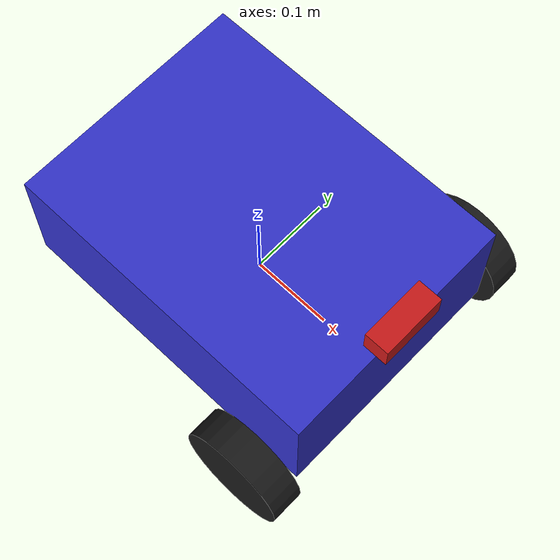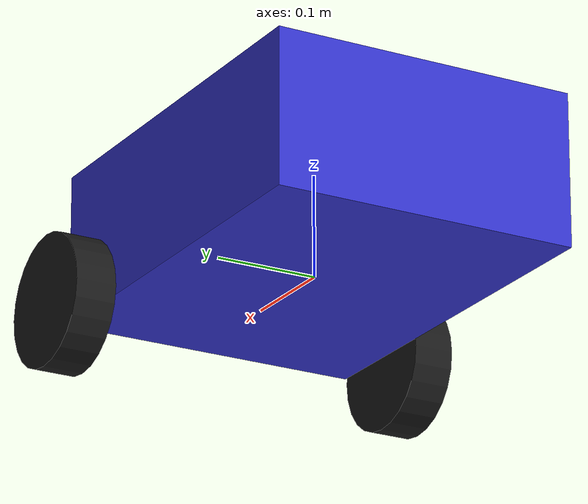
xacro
<?xml version="1.0"?>
<robot xmlns:xacro="http://www.ros.org/wiki/xacro" name="traffic_robot">

  <!-- Properties -->
  <xacro:property name="chassis_length" value="0.4"/>
  <xacro:property name="chassis_width" value="0.3"/>
  <xacro:property name="chassis_height" value="0.15"/>
  <xacro:property name="wheel_radius" value="0.065"/>
  <xacro:property name="wheel_width" value="0.04"/>
  <xacro:property name="wheel_offset_x" value="0.15"/>
  <xacro:property name="wheel_offset_z" value="-0.075"/>

  <!-- Base Link -->
  <link name="base_footprint"/>

  <!-- Chassis -->
  <link name="base_link">
    <visual>
      <geometry>
        <box size="${chassis_length} ${chassis_width} ${chassis_height}"/>
      </geometry>
      <material name="blue">
        <color rgba="0.2 0.2 0.8 1.0"/>
      </material>
    </visual>
    <collision>
      <geometry>
        <box size="${chassis_length} ${chassis_width} ${chassis_height}"/>
      </geometry>
    </collision>
    <inertial>
      <mass value="5.0"/>
      <inertia ixx="0.1" ixy="0.0" ixz="0.0" iyy="0.1" iyz="0.0" izz="0.1"/>
    </inertial>
  </link>

  <joint name="base_joint" type="fixed">
    <parent link="base_footprint"/>
    <child link="base_link"/>
    <origin xyz="0 0 ${wheel_radius}" rpy="0 0 0"/>
  </joint>

  <!-- Wheel Macro -->
  <xacro:macro name="wheel" params="prefix y_offset">
    <link name="${prefix}_wheel">
      <visual>
        <geometry>
          <cylinder radius="${wheel_radius}" length="${wheel_width}"/>
        </geometry>
        <material name="black">
          <color rgba="0.1 0.1 0.1 1.0"/>
        </material>
      </visual>
      <collision>
        <geometry>
          <cylinder radius="${wheel_radius}" length="${wheel_width}"/>
        </geometry>
      </collision>
      <inertial>
        <mass value="0.5"/>
        <inertia ixx="0.01" ixy="0.0" ixz="0.0" iyy="0.01" iyz="0.0" izz="0.01"/>
      </inertial>
    </link>

    <joint name="${prefix}_wheel_joint" type="continuous">
      <parent link="base_link"/>
      <child link="${prefix}_wheel"/>
      <origin xyz="${wheel_offset_x} ${y_offset} ${wheel_offset_z}" rpy="-1.5707 0 0"/>
      <axis xyz="0 0 1"/>
    </joint>
  </xacro:macro>

  <!-- Instantiate Wheels -->
  <xacro:wheel prefix="left_front" y_offset="0.18"/>
  <xacro:wheel prefix="right_front" y_offset="-0.18"/>
  <xacro:wheel prefix="left_rear" y_offset="0.18"/>
  <xacro:wheel prefix="right_rear" y_offset="-0.18"/>

  <!-- Camera Link -->
  <link name="camera_link">
    <visual>
      <geometry>
        <box size="0.03 0.08 0.03"/>
      </geometry>
      <material name="red">
        <color rgba="0.8 0.1 0.1 1.0"/>
      </material>
    </visual>
    <collision>
      <geometry>
        <box size="0.03 0.08 0.03"/>
      </geometry>
    </collision>
    <inertial>
      <mass value="0.1"/>
      <inertia ixx="0.001" ixy="0.0" ixz="0.0" iyy="0.001" iyz="0.0" izz="0.001"/>
    </inertial>
  </link>

  <joint name="camera_joint" type="fixed">
    <parent link="base_link"/>
    <child link="camera_link"/>
    <origin xyz="0.2 0 0.1" rpy="0 0 0"/>
  </joint>

  <!-- Camera Optical Frame -->
  <link name="camera_link_optical"/>

  <joint name="camera_optical_joint" type="fixed">
    <parent link="camera_link"/>
    <child link="camera_link_optical"/>
    <origin xyz="0 0 0" rpy="-1.5707 0 -1.5707"/>
  </joint>

  <!-- Gazebo Plugins -->
  <gazebo reference="base_link">
    <material>Gazebo/Blue</material>
  </gazebo>

  <!-- Differential Drive Plugin -->
  <gazebo>
    <plugin name="diff_drive" filename="libgazebo_ros_diff_drive.so">
      <update_rate>50</update_rate>
      <left_joint>left_front_wheel_joint</left_joint>
      <right_joint>right_front_wheel_joint</right_joint>
      <wheel_separation>0.36</wheel_separation>
      <wheel_diameter>${2*wheel_radius}</wheel_diameter>
      <max_wheel_torque>10</max_wheel_torque>
      <max_wheel_acceleration>1.0</max_wheel_acceleration>
      <command_topic>cmd_vel</command_topic>
      <publish_odom>true</publish_odom>
      <publish_odom_tf>true</publish_odom_tf>
      <publish_wheel_tf>false</publish_wheel_tf>
      <odometry_topic>odom</odometry_topic>
      <odometry_frame>odom</odometry_frame>
      <robot_base_frame>base_footprint</robot_base_frame>
    </plugin>
  </gazebo>

  <!-- Camera Plugin -->
  <gazebo reference="camera_link">
    <sensor name="camera" type="camera">
      <update_rate>30</update_rate>
      <camera>
        <horizontal_fov>1.3962634</horizontal_fov>
        <image>
          <width>640</width>
          <height>480</height>
          <format>R8G8B8</format>
        </image>
        <clip>
          <near>0.02</near>
          <far>300</far>
        </clip>
      </camera>
      <plugin name="camera_controller" filename="libgazebo_ros_camera.so">
        <frame_name>camera_link_optical</frame_name>
      </plugin>
    </sensor>
  </gazebo>

</robot>
